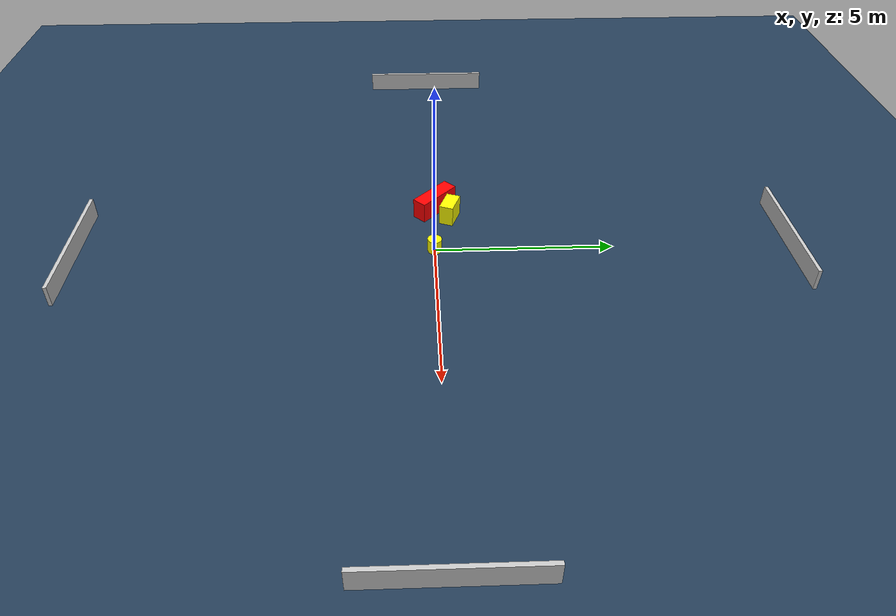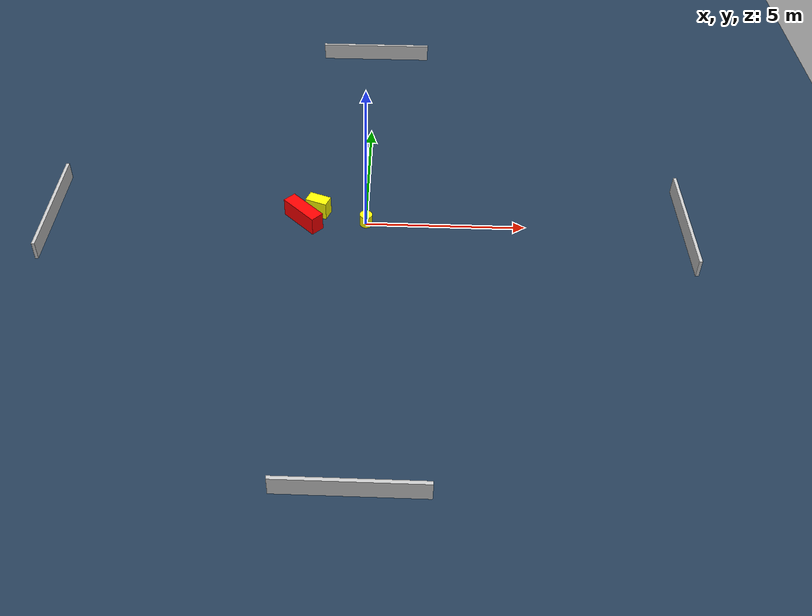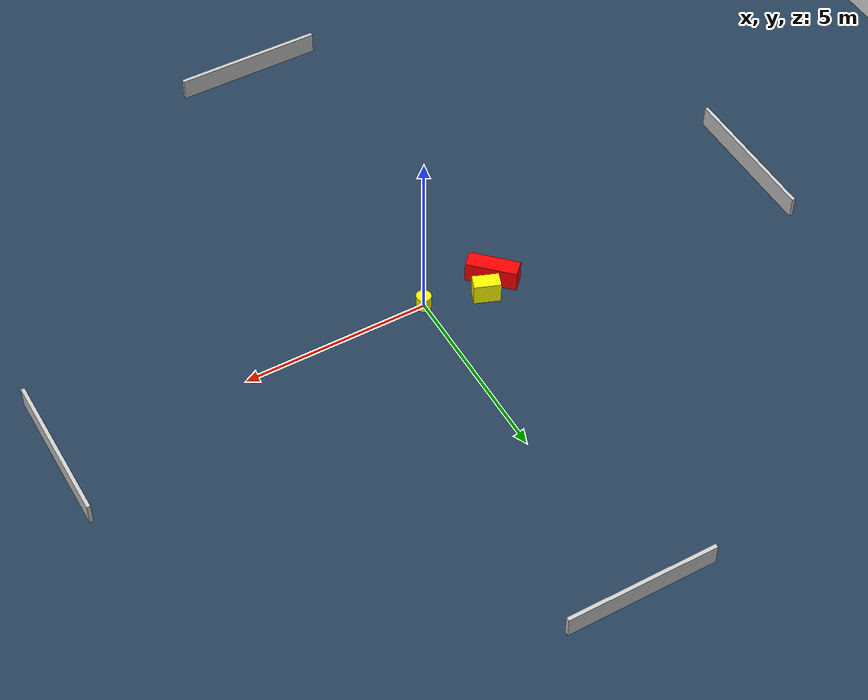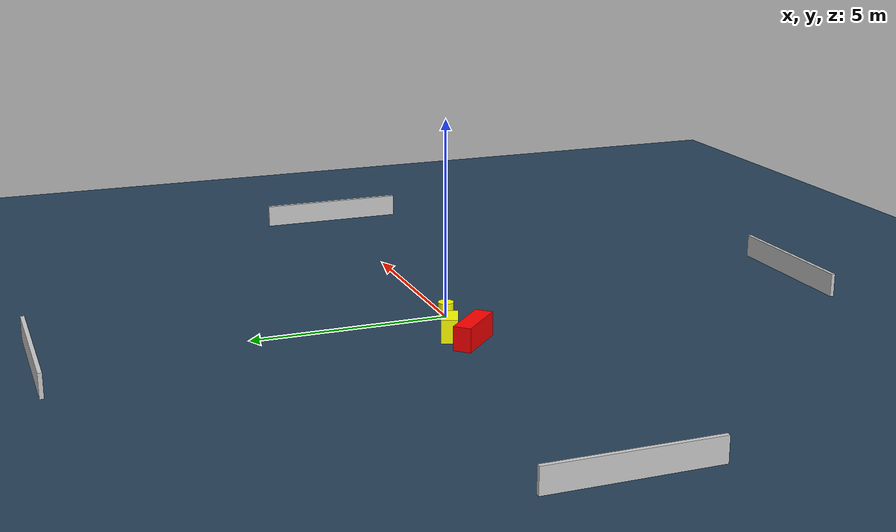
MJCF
<?xml version="1.0" ?>
<mujoco model="generated_environment">
  <option timestep="0.01" integrator="RK4" cone="elliptic"/>
  <default>
    <geom density="1"/>
  </default>
  <asset>
    <texture builtin="gradient" height="3072" name="skybox" rgb1="0.3 0.5 0.7" rgb2="0 0 0" type="skybox" width="512"/>
    <texture builtin="checker" height="300" name="groundplane" rgb1="0.2 0.3 0.4" rgb2="0.1 0.2 0.3" type="2d" width="300"/>
    <material name="groundplane" reflectance="0.2" texrepeat="5 5" texture="groundplane"/>
  </asset>
  <worldbody>
    <light dir="0 0 -1" directional="true" pos="0 0 1.5"/>
    <geom condim="3" friction="0.5 0.005 0.001" material="groundplane" name="floor" pos="0 0 0" size="0 0 0.05" type="plane"/>
    <body name="walls">
      <geom name="wall_1" condim="4" pos="-10.0 0.0 0.3" rgba="0.800000011920929 0.800000011920929 0.800000011920929 1.0" size="0.05 2.0 0.3" type="box"/>
      <geom name="wall_2" condim="4" pos="10.0 0.0 0.3" rgba="0.800000011920929 0.800000011920929 0.800000011920929 1.0" size="0.05 2.0 0.3" type="box"/>
      <geom name="wall_3" condim="4" pos="0.0 -10.0 0.3" rgba="0.800000011920929 0.800000011920929 0.800000011920929 1.0" size="2.0 0.05 0.3" type="box"/>
      <geom name="wall_4" condim="4" pos="0.0 10.0 0.3" rgba="0.800000011920929 0.800000011920929 0.800000011920929 1.0" size="2.0 0.05 0.3" type="box"/>
    </body>
    <body name="robot">
      <joint name="joint_x" type="slide" pos="0 0 0" axis="1 0 0"/>
      <joint name="joint_y" type="slide" pos="0 0 0" axis="0 1 0"/>
      <geom name="robot" type="cylinder" pos="0.0 0.0 0.2" size="0.2 0.2 0.0" mass="5.0" friction="1.0 0.005 0.0001" condim="4" rgba="1.0 1.0 0.0 1.0"/>
    </body>
    <body name="obstacle_1_movable">
      <geom name="obstacle_1_movable" condim="4" pos="-1.5448678819495765 0.4915603869371135 0.3" euler="0 0 158.90452221096498" friction="0.0 0.005 0.001" rgba="1.0 1.0 0.0 1.0" size="0.35235574128441605 0.20195472025697436 0.3" type="box" mass="0.1"/>
      <joint type="free"/>
    </body>
    <body name="obstacle_2_static">
      <geom name="obstacle_2_static" condim="4" pos="-1.9909740793091466 0.06370775316367355 0.3" euler="0 0 135.43013389702253" friction="0.0 0.005 0.001" rgba="1.0 0.0 0.0 1.0" size="0.6796197805807579 0.22032982616229302 0.3" type="box"/>
    </body>
  </worldbody>
  <actuator>
    <motor name="actuator_x" joint="joint_x" gear="1" ctrlrange="-1 1"/>
    <motor name="actuator_y" joint="joint_y" gear="1" ctrlrange="-1 1"/>
  </actuator>
</mujoco>
